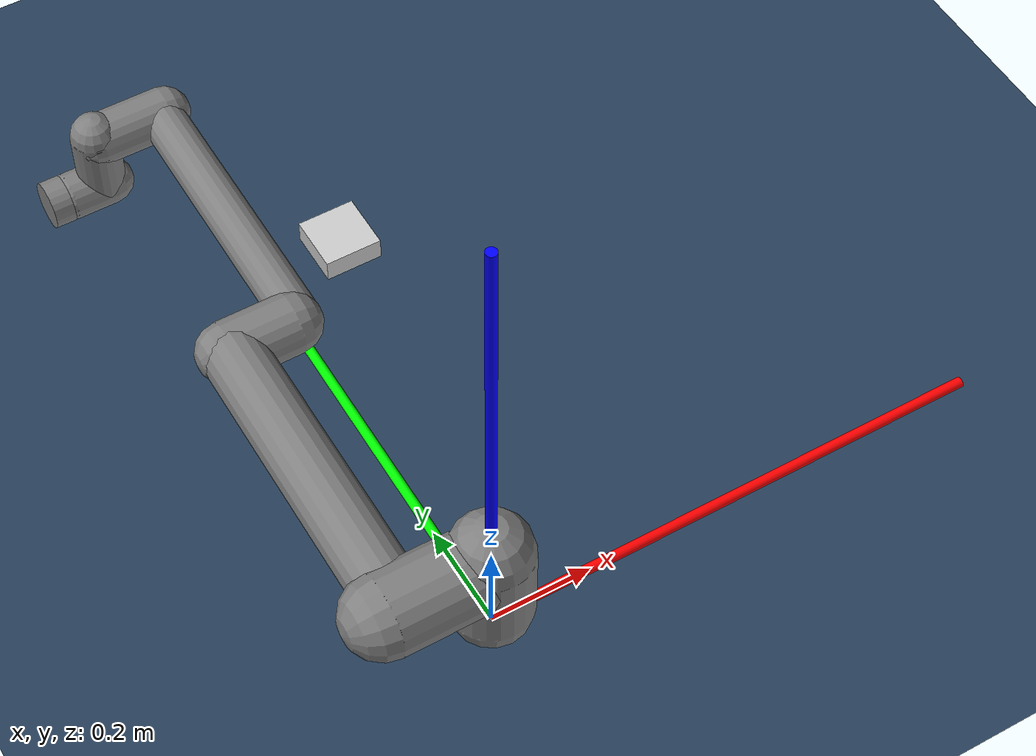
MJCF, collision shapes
<?xml version="1.0" encoding="utf-8" ?>
<mujoco model="robot_scene">
    <option timestep="0.005" integrator="RK4" solver="Newton" gravity="0 0 -9.82"/>
    <option cone="elliptic" impratio="100"/>

    <include file="universal_robots_ur10e/ur10e.xml"/>

    <statistic extent="0.3" center="0.3 0 0"/>

    <visual>
      <rgba haze="0.15 0.25 0.35 1"/>
      <quality shadowsize="8192"/>
      <global azimuth="220" elevation="-30"/>
    </visual>

    <asset>
      <texture type="skybox" builtin="gradient" rgb1="0.3 0.5 0.7" rgb2="0 0 0" width="512" height="3072"/>
      <texture type="2d" name="groundplane" builtin="checker" mark="edge" rgb1="0.2 0.3 0.4" rgb2="0.1 0.2 0.3" markrgb="0.8 0.8 0.8" width="300" height="300"/>
      <material name="groundplane" texture="groundplane" texuniform="true" texrepeat="5 5" reflectance="0.2"/>
    </asset>

    <worldbody>
        <!-- ==================================== Coordinate System ============================================= -->
        <geom group="2" type="cylinder" contype="0" conaffinity="0" fromto="0 0 0 1 0 0" size="0.01" rgba="1 0 0 1"/>
        <geom group="2" type="cylinder" contype="0" conaffinity="0" fromto="0 0 0 0 1 0" size="0.01" rgba="0 1 0 1"/>
        <geom group="2" type="cylinder" contype="0" conaffinity="0" fromto="0 0 0 0 0 1" size="0.01" rgba="0 0 1 1"/>

        <body name="box" pos="0 0 0.1">
            <freejoint/>
            <geom type="box" size="0.05 0.01 0.05"  rgba="0.8 0.8 0.8 1"/>
        </body>

        <body name="box1" pos="0 0.5 0.5">
            <freejoint/>
            <geom type="box" size="0.05 0.05 0.02"  rgba="0.8 0.8 0.8 1"/>
        </body>

        <light pos="0 0 1"/>
        <light pos="0.3 0 1.5" dir="0 0 -1" directional="true"/>
        <geom name="floor" pos="0 0 0" size="0 0 0.05" type="plane" material="groundplane"/>
  </worldbody>

</mujoco>

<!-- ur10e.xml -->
<mujoco model="ur10e">
  <compiler angle="radian" meshdir="assets" autolimits="true"/>

  <option integrator="implicitfast"/>

  <default>
    <default class="ur10e">
      <material specular="0.5" shininess="0.25"/>
      <joint axis="0 1 0" range="-6.28319 6.28319" armature="0.1"/>
      <position ctrlrange="-6.2831 6.2831"/>
      <general biastype="affine" ctrlrange="-6.2831 6.2831" gainprm="5000" biasprm="0 -5000 -500"/>
      <default class="size4">
        <joint damping="10"/>
        <general forcerange="-330 330"/>
      </default>
      <default class="size3">
        <joint damping="5"/>
        <general forcerange="-150 150"/>
        <default class="size3_limited">
          <joint range="-3.1415 3.1415"/>
          <general ctrlrange="-3.1415 3.1415"/>
        </default>
      </default>
      <default class="size2">
        <joint damping="2"/>
        <general forcerange="-56 56"/>
      </default>
      <default class="visual">
        <geom type="mesh" contype="0" conaffinity="0" group="2"/>
      </default>
      <default class="collision">
        <geom type="capsule" group="3"/>
        <default class="eef_collision">
          <geom type="cylinder"/>
        </default>
      </default>
      <site size="0.001" rgba="0.5 0.5 0.5 0.3" group="4"/>
    </default>
  </default>

  <asset>
    <material class="ur10e" name="black" rgba="0.033 0.033 0.033 1"/>
    <material class="ur10e" name="jointgray" rgba="0.278 0.278 0.278 1"/>
    <material class="ur10e" name="linkgray" rgba="0.82 0.82 0.82 1"/>
    <material class="ur10e" name="urblue" rgba="0.49 0.678 0.8 1"/>

    <mesh file="base_0.obj"/>
    <mesh file="base_1.obj"/>
    <mesh file="shoulder_0.obj"/>
    <mesh file="shoulder_1.obj"/>
    <mesh file="shoulder_2.obj"/>
    <mesh file="upperarm_0.obj"/>
    <mesh file="upperarm_1.obj"/>
    <mesh file="upperarm_2.obj"/>
    <mesh file="upperarm_3.obj"/>
    <mesh file="forearm_0.obj"/>
    <mesh file="forearm_1.obj"/>
    <mesh file="forearm_2.obj"/>
    <mesh file="forearm_3.obj"/>
    <mesh file="wrist1_0.obj"/>
    <mesh file="wrist1_1.obj"/>
    <mesh file="wrist1_2.obj"/>
    <mesh file="wrist2_0.obj"/>
    <mesh file="wrist2_1.obj"/>
    <mesh file="wrist2_2.obj"/>
    <mesh file="wrist3.obj"/>
  </asset>

  <worldbody>
    <light name="spotlight" mode="targetbodycom" target="wrist_2_link" pos="0 -1 2"/>
    <body name="base" quat="1 0 0 1" childclass="ur10e">
      <inertial mass="4.0" pos="0 0 0" diaginertia="0.0061063308908 0.0061063308908 0.01125"/>
      <geom mesh="base_0" material="black" class="visual"/>
      <geom mesh="base_1" material="jointgray" class="visual"/>
      <body name="shoulder_link" pos="0 0 0.181">
        <inertial pos="0 0 0" mass="7.778" diaginertia="0.0314743 0.0314743 0.0218756"/>
        <joint name="shoulder_pan_joint" class="size4" axis="0 0 1"/>
        <geom mesh="shoulder_0" material="urblue" class="visual"/>
        <geom mesh="shoulder_1" material="black" class="visual"/>
        <geom mesh="shoulder_2" material="jointgray" class="visual"/>
        <geom class="collision" size="0.078 0.08" pos="0 0 -0.05"/>
        <body name="upper_arm_link" pos="0 0.176 0" quat="1 0 1 0">
          <inertial pos="0 0 0.3065" mass="12.93" diaginertia="0.423074 0.423074 0.0363656"/>
          <joint name="shoulder_lift_joint" class="size4"/>
          <geom mesh="upperarm_0" material="black" class="visual"/>
          <geom mesh="upperarm_1" material="jointgray" class="visual"/>
          <geom mesh="upperarm_2" material="urblue" class="visual"/>
          <geom mesh="upperarm_3" material="linkgray" class="visual"/>
          <geom class="collision" pos="0 -0.05 0" quat="1 1 0 0" size="0.078 0.08"/>
          <geom class="collision" size="0.06 0.3" pos="0 0 0.3"/>
          <body name="forearm_link" pos="0 -0.137 0.613">
            <inertial pos="0 0 0.2855" mass="3.87" diaginertia="0.11059 0.11059 0.0108844"/>
            <joint name="elbow_joint" class="size3_limited"/>
            <geom mesh="forearm_0" material="urblue" class="visual"/>
            <geom mesh="forearm_1" material="black" class="visual"/>
            <geom mesh="forearm_2" material="jointgray" class="visual"/>
            <geom mesh="forearm_3" material="linkgray" class="visual"/>
            <geom class="collision" pos="0 0.08 0" quat="1 1 0 0" size="0.058 0.065"/>
            <geom class="collision" size="0.043 0.28" pos="0 0 0.29"/>
            <body name="wrist_1_link" pos="0 0 0.571" quat="1 0 1 0">
              <inertial pos="0 0.135 0" quat="0.5 0.5 -0.5 0.5" mass="1.96"
                diaginertia="0.0055125 0.00510825 0.00510825"/>
              <joint name="wrist_1_joint" class="size2"/>
              <geom mesh="wrist1_0" material="black" class="visual"/>
              <geom mesh="wrist1_1" material="urblue" class="visual"/>
              <geom mesh="wrist1_2" material="jointgray" class="visual"/>
              <geom class="collision" pos="0 0.06 0" quat="1 1 0 0" size="0.05 0.07"/>
              <body name="wrist_2_link" pos="0 0.135 0">
                <inertial pos="0 0 0.12" quat="0.5 0.5 -0.5 0.5" mass="1.96"
                  diaginertia="0.0055125 0.00510825 0.00510825"/>
                <joint name="wrist_2_joint" axis="0 0 1" class="size2"/>
                <geom mesh="wrist2_0" material="black" class="visual"/>
                <geom mesh="wrist2_1" material="urblue" class="visual"/>
                <geom mesh="wrist2_2" material="jointgray" class="visual"/>
                <geom class="collision" size="0.046 0.065" pos="0 0 0.05"/>
                <geom class="collision" pos="0 0.028 0.12" quat="1 1 0 0" size="0.046 0.043"/>
                <body name="wrist_3_link" pos="0 0 0.12">
                  <inertial pos="0 0.092 0" quat="0 1 -1 0" mass="0.202"
                    diaginertia="0.000204525 0.000144346 0.000144346"/>
                  <joint name="wrist_3_joint" class="size2"/>
                  <geom material="linkgray" mesh="wrist3" class="visual"/>
                  <geom class="eef_collision" pos="0 0.097 0" quat="1 1 0 0" size="0.046 0.02"/>
                  <site name="attachment_site" pos="0 0.1 0" quat="-1 1 0 0"/>
                </body>
              </body>
            </body>
          </body>
        </body>
      </body>
    </body>
  </worldbody>

  <actuator>
    <general class="size4" name="shoulder_pan" joint="shoulder_pan_joint"/>
    <general class="size4" name="shoulder_lift" joint="shoulder_lift_joint"/>
    <general class="size3_limited" name="elbow" joint="elbow_joint"/>
    <general class="size2" name="wrist_1" joint="wrist_1_joint"/>
    <general class="size2" name="wrist_2" joint="wrist_2_joint"/>
    <general class="size2" name="wrist_3" joint="wrist_3_joint"/>
  </actuator>

  <keyframe>
    <key name="home" qpos="-1.5708 -1.5708 1.5708 -1.5708 -1.5708 0" ctrl="-1.5708 -1.5708 1.5708 -1.5708 -1.5708 0"/>
  </keyframe>
</mujoco>
